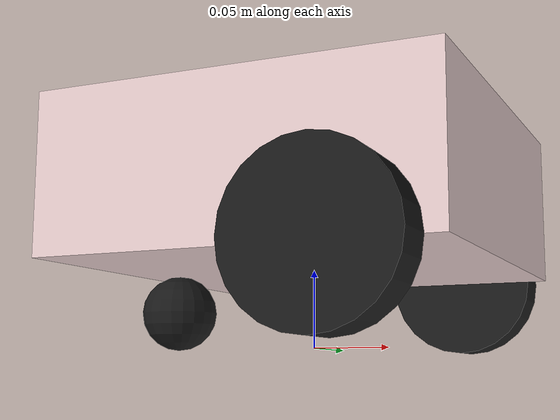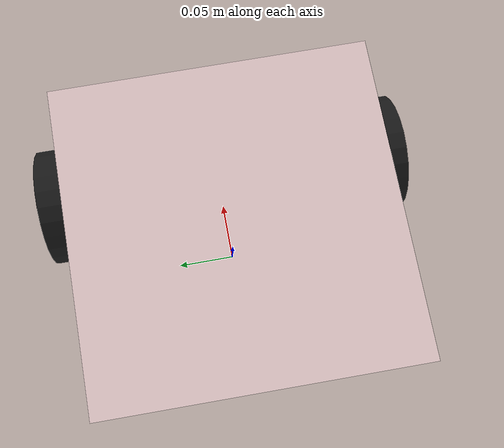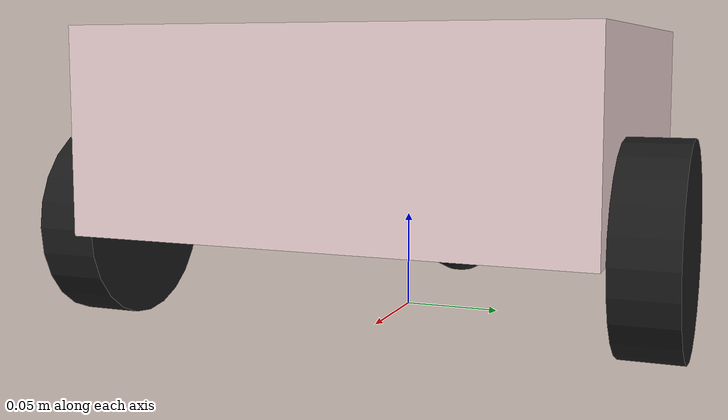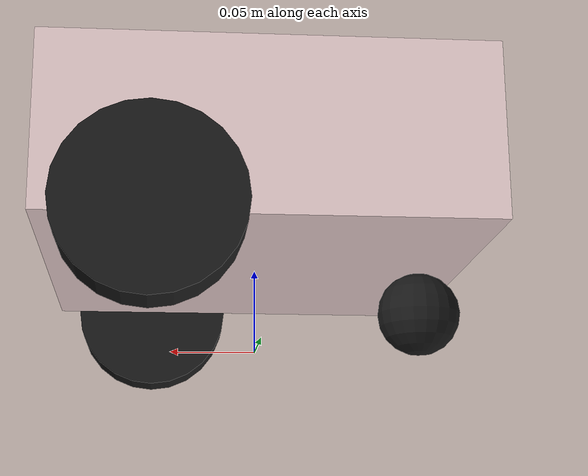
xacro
<?xml version="1.0"?>
<robot xmlns:xacro="http://www.ros.org/wiki/xacro">
<xacro:include filename="inertial_macros.xacro" />

<!-- Cette description est juste une démo pour le robot et non la description finale -->

<!--material-->

<material name="Blue">
    <color rgba="0.15 0.39 0.96 1" />
</material>

<material name="Cyan">
    <color rgba="0.05 1 0.98 0.8" />
</material>

<material name="Pink">
    <color rgba="1 0.09 0.61 0.8" />
</material>

<material name="Purple">
    <color rgba="0.67 0 0.8 0.8" />
</material>

<material name="Green">
    <color rgba="0.29 0.9 0.22 0.8" />
</material>

<material name="Gold">
    <color rgba="0.72 0.67 0.23 0.8" />
</material>

<material name="Red">
    <color rgba="0.94 0.23 0.23 0.8" />
</material>

<material name="Grey">
    <color rgba="0.5 0.5 0.5 1" />
</material>

<material name="White">
    <color rgba="0.9 0.8 0.8 1" />
</material>

<material name="Black">
    <color rgba="0.1 0.1 0.1 1" />
</material>

<link name="base_footprint"></link>
<joint name="base_footprint_joint" type="fixed">
    <parent link="base_footprint" />
    <child link="base_link" />
    <origin xyz="0 0 0.1" rpy="0 0 0" />
</joint>

<!--Links/Joints-->
<!--Base_link-->
<link name="base_link">
    <visual>
        <origin xyz="0 0 0" rpy="0 0 0" />
        <geometry>
            <box size="0.25 0.25 0.10" />
        </geometry>
        <material name="White">
        </material>
    </visual>
    <collision>
        <origin xyz="0 0 0" rpy="0 0 0" />
        <geometry>
            <box size="0.25 0.25 0.10" />
        </geometry>
    </collision>

    <xacro:inertial_box mass="2.0" x="0.25" y="0.25" z="0.10" >
        <origin xyz="0 0 0" rpy="0 0 0" />
    </xacro:inertial_box>
</link>
<gazebo reference="base_link">
  <material>Gazebo/White</material>
</gazebo>

<!--left wheel-->
<link name="left_wheel_link">
    <visual>
        <origin xyz="0 0 0" rpy="1.5708 0 0" />
        <geometry>
            <cylinder radius="0.05" length="0.03" />
        </geometry>
        <material name="Black">
        </material>
    </visual>
    <collision>
        <origin xyz="0 0 0" rpy="1.5708 0 0" />
        <geometry>
            <cylinder radius="0.05" length="0.03" />
        </geometry>
    </collision>
    <xacro:inertial_cylinder mass="0.3" radius="0.05" length="0.02" >
        <origin xyz="0 0 0" rpy="1.5708 0 0" />
    </xacro:inertial_cylinder>
</link>
<joint name="left_wheel_joint" type="continuous">
    <parent link="base_link" />
    <child link="left_wheel_link" />
    <origin xyz="0.0625 0.14 -0.05" rpy="0 0 0" />
    <limit lower="-1.0" upper="1.0" effort="100" velocity="100" />
    <axis xyz="0 1 0" />
</joint>

<gazebo reference="left_wheel_link">
  <material>Gazebo/Black</material>
  <mu1>0.5</mu1>
  <mu2>0.5</mu2>
</gazebo>

<!--right wheel-->
<link name="right_wheel_link">
    <visual>
        <origin xyz="0 0 0" rpy="1.5708 0 0" />
        <geometry>
            <cylinder radius="0.05" length="0.03" />
        </geometry>
        <material name="Black">
        </material>
    </visual>
    <collision>
        <origin xyz="0 0 0" rpy="1.5708 0 0" />
        <geometry>
            <cylinder radius="0.05" length="0.03" />
        </geometry>
    </collision>
    <xacro:inertial_cylinder mass="0.3" radius="0.05" length="0.02" >
        <origin xyz="0 0 0" rpy="1.5708 0 0" />
    </xacro:inertial_cylinder>
</link>
<joint name="right_wheel_joint" type="continuous">
    <parent link="base_link" />
    <child link="right_wheel_link" />
    <origin xyz="0.0625 -0.14 -0.05" rpy="0 0 0" />
    <limit lower="-1.0" upper="1.0" effort="100" velocity="100" />
    <axis xyz="0 1 0" />
</joint>

<gazebo reference="right_wheel_link">
  <material>Gazebo/Black</material>
  <mu1>0.5</mu1>
  <mu2>0.5</mu2>

</gazebo>

<!--caster_wheel-->
<link name="caster_wheel_link">
    <visual>
        <origin xyz="0 0 0" rpy="0 0 0" />
        <geometry>
            <sphere radius="0.025" />
        </geometry>
        <material name="Black">
        </material>
    </visual>
    <collision>
        <origin xyz="0 0 0" rpy="0 0 0" />
        <geometry>
            <sphere radius="0.025" />
        </geometry>
    </collision>
    <xacro:inertial_sphere mass="0.2" radius="0.025">
        <origin xyz="0 0 0" rpy="0 0 0"/>
    </xacro:inertial_sphere>
</link>

<joint name="caster_wheel_base_joint" type="fixed">
    <parent link="base_link" />
    <child link="caster_wheel_link" />
    <origin xyz="-0.1 0 -0.075" rpy="0 0 0" />
    <limit lower="-1.0" upper="1.0" effort="100" velocity="100" />
    </joint>

<gazebo reference="caster_wheel_link">
    <material>Gazebo/Black</material>
    <mu1>0.005</mu1>
    <mu2>0.005</mu2>
</gazebo>

</robot>
